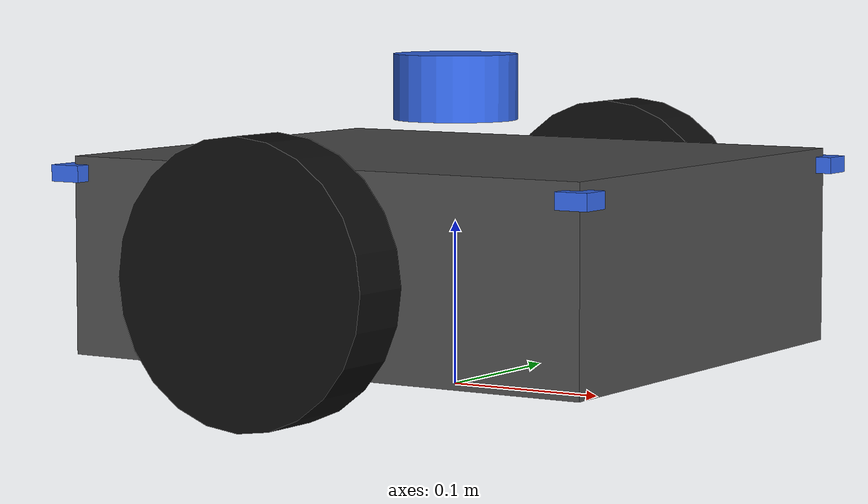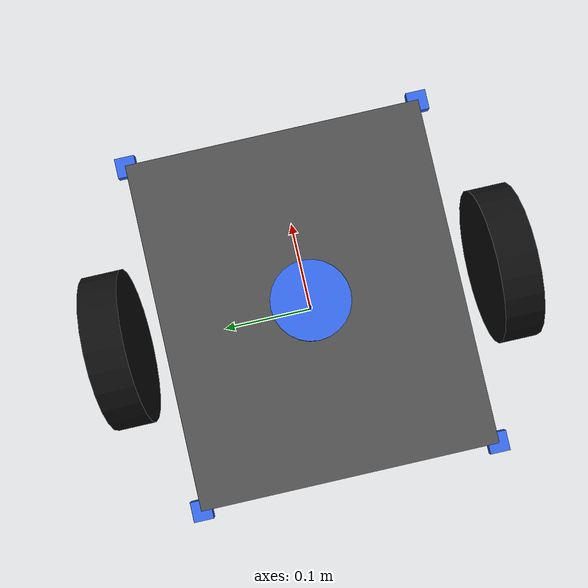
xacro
<?xml version="1.0"?>
<robot name="argo_mini" xmlns:xacro="http://www.ros.org/wiki/xacro">

  <!-- Values mirrored from serial_bridge_node.py - keep both in sync. -->
  <xacro:property name="wheel_radius" value="0.08255"/>
  <xacro:property name="wheel_base"   value="0.41"/>
  <xacro:property name="wheel_width"  value="0.04"/>

  <!-- Chassis size - measure and correct to your actual robot. -->
  <xacro:property name="chassis_length" value="0.35"/>
  <xacro:property name="chassis_width"  value="0.30"/>
  <xacro:property name="chassis_height" value="0.12"/>

  <material name="chassis_grey"><color rgba="0.3 0.3 0.3 1"/></material>
  <material name="wheel_black"><color rgba="0.05 0.05 0.05 1"/></material>
  <material name="sensor_blue"><color rgba="0.2 0.4 0.9 1"/></material>

  <!-- REP-105: base_footprint is the ground-projected robot origin; -->
  <!-- base_link sits wheel_radius above it, at the wheel-axle height. -->
  <link name="base_footprint"/>

  <link name="base_link">
    <visual>
      <geometry><box size="${chassis_length} ${chassis_width} ${chassis_height}"/></geometry>
      <material name="chassis_grey"/>
    </visual>
    <collision>
      <geometry><box size="${chassis_length} ${chassis_width} ${chassis_height}"/></geometry>
    </collision>
  </link>

  <joint name="base_footprint_to_base_link" type="fixed">
    <parent link="base_footprint"/>
    <child link="base_link"/>
    <origin xyz="0 0 ${wheel_radius}" rpy="0 0 0"/>
  </joint>

  <!-- Wheels - fixed joints (no wheel odometry/joint_state publishing yet).
       Switch to type="continuous" + add joint_state_publisher if you want
       the wheels to visually spin in RViz. -->
  <xacro:macro name="wheel" params="side y_offset">
    <link name="${side}_wheel">
      <visual>
        <origin xyz="0 0 0" rpy="${pi/2} 0 0"/>
        <geometry><cylinder radius="${wheel_radius}" length="${wheel_width}"/></geometry>
        <material name="wheel_black"/>
      </visual>
    </link>
    <joint name="base_to_${side}_wheel" type="fixed">
      <parent link="base_link"/>
      <child link="${side}_wheel"/>
      <origin xyz="0 ${y_offset} 0" rpy="0 0 0"/>
    </joint>
  </xacro:macro>

  <xacro:wheel side="left"  y_offset="${wheel_base/2}"/>
  <xacro:wheel side="right" y_offset="${-wheel_base/2}"/>

  <link name="laser">
    <visual>
      <geometry><cylinder radius="0.038" length="0.04"/></geometry>
      <material name="sensor_blue"/>
    </visual>
  </link>
  <joint name="base_to_laser" type="fixed">
    <parent link="base_link"/>
    <child link="laser"/>
    <origin xyz="0 0 0.1" rpy="0 0 0"/>
  </joint>

  <!-- IMU - not populated by the current argo_mini.ino firmware (no MPU6050
       code yet); frame kept for when gyro support is added. -->
  <link name="imu_link"/>
  <joint name="base_to_imu" type="fixed">
    <parent link="base_link"/>
    <child link="imu_link"/>
    <origin xyz="0 0 0" rpy="0 0 0"/>
  </joint>

  <!-- Ultrasonic sensors (HC-SR04 x4) - frame ids must match
       SerialBridge._us_frame_ids in serial_bridge_node.py exactly.
       Placeholder corner positions - measure and update the real mounts. -->
  <xacro:macro name="us_sensor" params="name x y">
    <link name="${name}">
      <visual>
        <geometry><box size="0.02 0.02 0.01"/></geometry>
        <material name="sensor_blue"/>
      </visual>
    </link>
    <joint name="base_to_${name}" type="fixed">
      <parent link="base_link"/>
      <child link="${name}"/>
      <origin xyz="${x} ${y} 0.05" rpy="0 0 0"/>
    </joint>
  </xacro:macro>

  <xacro:us_sensor name="us_fl" x="${chassis_length/2}"  y="${chassis_width/2}"/>
  <xacro:us_sensor name="us_fr" x="${chassis_length/2}"  y="${-chassis_width/2}"/>
  <xacro:us_sensor name="us_bl" x="${-chassis_length/2}" y="${chassis_width/2}"/>
  <xacro:us_sensor name="us_br" x="${-chassis_length/2}" y="${-chassis_width/2}"/>

</robot>
